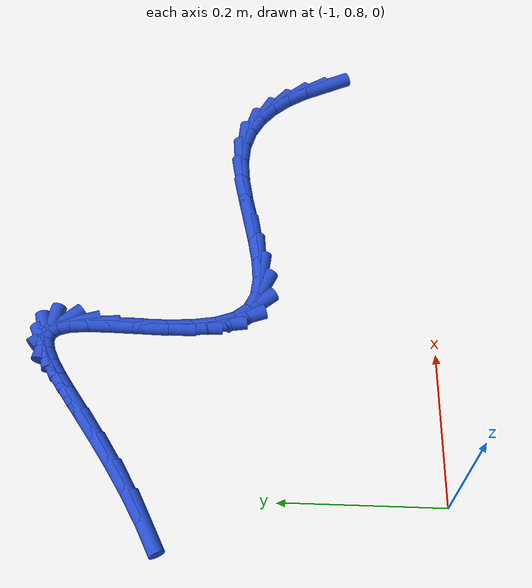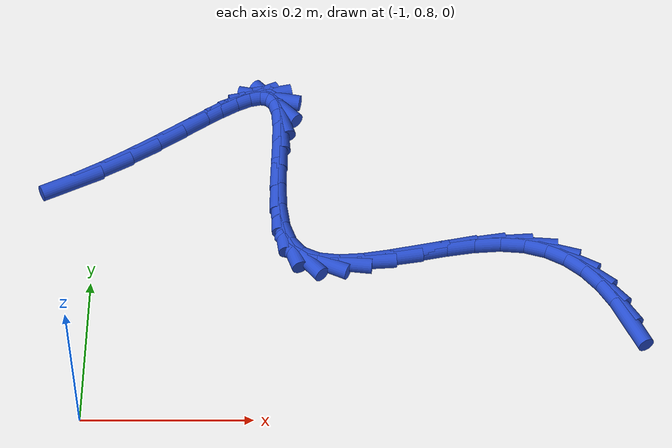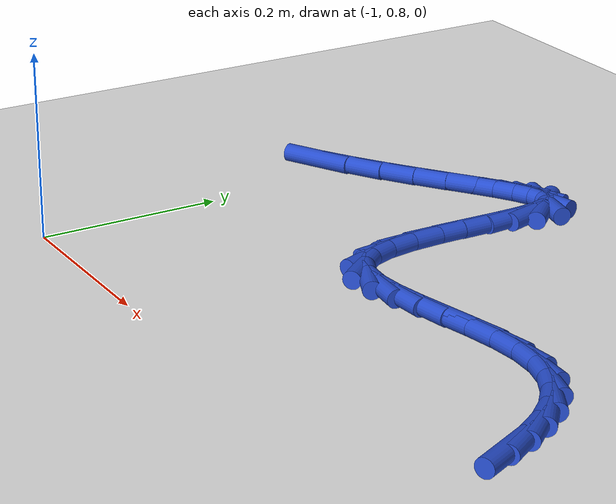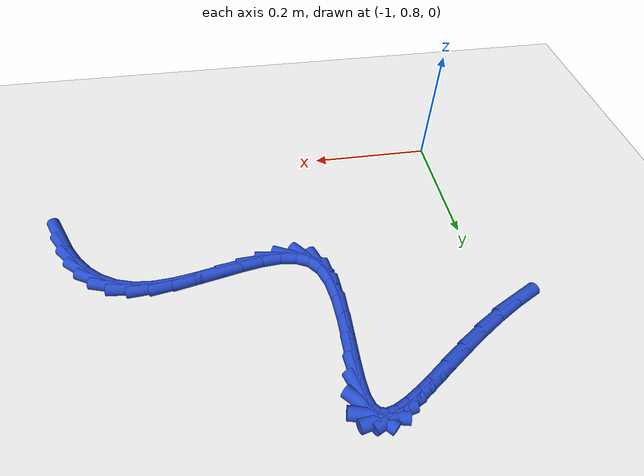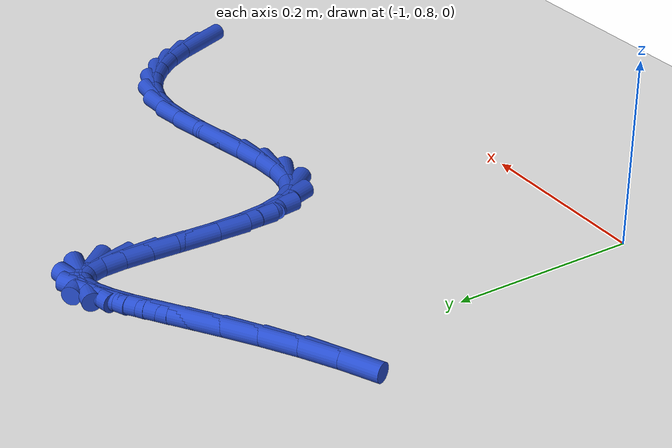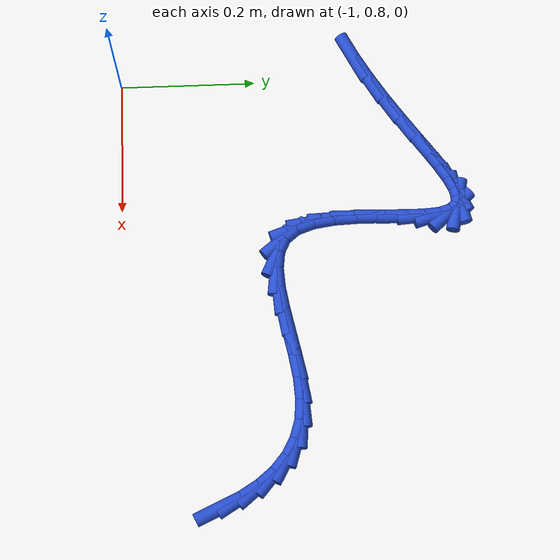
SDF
<sdf version="1.6">
 <world name="default">
  <model name="ground_plane">
   <static>1</static>
   <link name="link">
    <collision name="collision">
     <geometry><plane><normal>0 0 1</normal><size>100 100</size></plane></geometry>
     <surface><friction><ode><mu>100</mu><mu2>50</mu2></ode></friction></surface>
    </collision>
    <visual name="visual">
     <cast_shadows>0</cast_shadows>
     <geometry><plane><normal>0 0 1</normal><size>100 100</size></plane></geometry>
     <material>
      <script><uri>file://media/materials/scripts/gazebo.material</uri><name>Gazebo/WhiteGlow</name></script>
     </material>
    </visual>
   </link>
  </model>
  <model name="line">
   <link name="link_35">
    <pose>-0.35847328944588197 0.9370278014320105 0.01 0 1.57 -1.1396118701778544</pose>
    <collision name="collision">
     <geometry><cylinder><radius>0.01</radius><length>0.08</length></cylinder></geometry>
    </collision>
    <visual name="visual">
     <material>
      <script><name>Gazebo/Blue</name><uri>file://media/materials/scripts/gazebo.material</uri></script>
     </material>
     <geometry><cylinder><radius>0.01</radius><length>0.08</length></cylinder></geometry>
    </visual>
   </link>
   <link name="link_36">
    <pose>-0.37161186978817784 0.9655864937378841 0.01 0 1.57 -1.0203752992261192</pose>
    <collision name="collision">
     <geometry><cylinder><radius>0.01</radius><length>0.08</length></cylinder></geometry>
    </collision>
    <visual name="visual">
     <material>
      <script><name>Gazebo/Blue</name><uri>file://media/materials/scripts/gazebo.material</uri></script>
     </material>
     <geometry><cylinder><radius>0.01</radius><length>0.08</length></cylinder></geometry>
    </visual>
   </link>
   <link name="link_37">
    <pose>-0.3872520079518267 0.9910721207037754 0.01 0 1.57 -0.8756375920364509</pose>
    <collision name="collision">
     <geometry><cylinder><radius>0.01</radius><length>0.08</length></cylinder></geometry>
    </collision>
    <visual name="visual">
     <material>
      <script><name>Gazebo/Blue</name><uri>file://media/materials/scripts/gazebo.material</uri></script>
     </material>
     <geometry><cylinder><radius>0.01</radius><length>0.08</length></cylinder></geometry>
    </visual>
   </link>
   <link name="link_38">
    <pose>-0.4055128491173675 1.0129664054069603 0.01 0 1.57 -0.7026689082415356</pose>
    <collision name="collision">
     <geometry><cylinder><radius>0.01</radius><length>0.08</length></cylinder></geometry>
    </collision>
    <visual name="visual">
     <material>
      <script><name>Gazebo/Blue</name><uri>file://media/materials/scripts/gazebo.material</uri></script>
     </material>
     <geometry><cylinder><radius>0.01</radius><length>0.08</length></cylinder></geometry>
    </visual>
   </link>
   <link name="link_39">
    <pose>-0.42651353846533946 1.0307510709247152 0.01 0 1.57 -0.5039347985222223</pose>
    <collision name="collision">
     <geometry><cylinder><radius>0.01</radius><length>0.08</length></cylinder></geometry>
    </collision>
    <visual name="visual">
     <material>
      <script><name>Gazebo/Blue</name><uri>file://media/materials/scripts/gazebo.material</uri></script>
     </material>
     <geometry><cylinder><radius>0.01</radius><length>0.08</length></cylinder></geometry>
    </visual>
   </link>
   <link name="link_40">
    <pose>-0.45037322117628154 1.0439078403343163 0.01 0 1.57 -0.2900632042792648</pose>
    <collision name="collision">
     <geometry><cylinder><radius>0.01</radius><length>0.08</length></cylinder></geometry>
    </collision>
    <visual name="visual">
     <material>
      <script><name>Gazebo/Blue</name><uri>file://media/materials/scripts/gazebo.material</uri></script>
     </material>
     <geometry><cylinder><radius>0.01</radius><length>0.08</length></cylinder></geometry>
    </visual>
   </link>
   <link name="link_41">
    <pose>-0.4772110424307331 1.05191843671304 0.01 0 1.57 -0.08105332584894963</pose>
    <collision name="collision">
     <geometry><cylinder><radius>0.01</radius><length>0.08</length></cylinder></geometry>
    </collision>
    <visual name="visual">
     <material>
      <script><name>Gazebo/Blue</name><uri>file://media/materials/scripts/gazebo.material</uri></script>
     </material>
     <geometry><cylinder><radius>0.01</radius><length>0.08</length></cylinder></geometry>
    </visual>
   </link>
   <link name="link_42">
    <pose>-0.5071016873078441 1.0543464923741948 0.01 0 1.57 0.07438077698261866</pose>
    <collision name="collision">
     <geometry><cylinder><radius>0.01</radius><length>0.08</length></cylinder></geometry>
    </collision>
    <visual name="visual">
     <material>
      <script><name>Gazebo/Blue</name><uri>file://media/materials/scripts/gazebo.material</uri></script>
     </material>
     <geometry><cylinder><radius>0.01</radius><length>0.08</length></cylinder></geometry>
    </visual>
   </link>
   <link name="link_43">
    <pose>-0.5394803999400526 1.0519336873142304 0.01 0 1.57 0.16491094727989716</pose>
    <collision name="collision">
     <geometry><cylinder><radius>0.01</radius><length>0.08</length></cylinder></geometry>
    </collision>
    <visual name="visual">
     <material>
      <script><name>Gazebo/Blue</name><uri>file://media/materials/scripts/gazebo.material</uri></script>
     </material>
     <geometry><cylinder><radius>0.01</radius><length>0.08</length></cylinder></geometry>
    </visual>
   </link>
   <link name="link_44">
    <pose>-0.573303058745685 1.0463048412030729 0.01 0 1.57 0.20739517713781389</pose>
    <collision name="collision">
     <geometry><cylinder><radius>0.01</radius><length>0.08</length></cylinder></geometry>
    </collision>
    <visual name="visual">
     <material>
      <script><name>Gazebo/Blue</name><uri>file://media/materials/scripts/gazebo.material</uri></script>
     </material>
     <geometry><cylinder><radius>0.01</radius><length>0.08</length></cylinder></geometry>
    </visual>
   </link>
   <link name="link_45">
    <pose>-0.6075139325860752 1.0391061620996551 0.01 0 1.57 0.20922395566981875</pose>
    <collision name="collision">
     <geometry><cylinder><radius>0.01</radius><length>0.08</length></cylinder></geometry>
    </collision>
    <visual name="visual">
     <material>
      <script><name>Gazebo/Blue</name><uri>file://media/materials/scripts/gazebo.material</uri></script>
     </material>
     <geometry><cylinder><radius>0.01</radius><length>0.08</length></cylinder></geometry>
    </visual>
   </link>
   <link name="link_46">
    <pose>-0.6410572903225589 1.031983858062911 0.01 0 1.57 0.16809393093126634</pose>
    <collision name="collision">
     <geometry><cylinder><radius>0.01</radius><length>0.08</length></cylinder></geometry>
    </collision>
    <visual name="visual">
     <material>
      <script><name>Gazebo/Blue</name><uri>file://media/materials/scripts/gazebo.material</uri></script>
     </material>
     <geometry><cylinder><radius>0.01</radius><length>0.08</length></cylinder></geometry>
    </visual>
   </link>
   <link name="link_47">
    <pose>-0.6728774008164701 1.0265841371517745 0.01 0 1.57 0.06981919899489512</pose>
    <collision name="collision">
     <geometry><cylinder><radius>0.01</radius><length>0.08</length></cylinder></geometry>
    </collision>
    <visual name="visual">
     <material>
      <script><name>Gazebo/Blue</name><uri>file://media/materials/scripts/gazebo.material</uri></script>
     </material>
     <geometry><cylinder><radius>0.01</radius><length>0.08</length></cylinder></geometry>
    </visual>
   </link>
   <link name="link_48">
    <pose>-0.7019185329291444 1.0245532074251793 0.01 0 1.57 -0.11783682985157118</pose>
    <collision name="collision">
     <geometry><cylinder><radius>0.01</radius><length>0.08</length></cylinder></geometry>
    </collision>
    <visual name="visual">
     <material>
      <script><name>Gazebo/Blue</name><uri>file://media/materials/scripts/gazebo.material</uri></script>
     </material>
     <geometry><cylinder><radius>0.01</radius><length>0.08</length></cylinder></geometry>
    </visual>
   </link>
   <link name="link_49">
    <pose>-0.7271249555219156 1.0275372769420579 0.01 0 1.57 -0.44325495950887006</pose>
    <collision name="collision">
     <geometry><cylinder><radius>0.01</radius><length>0.08</length></cylinder></geometry>
    </collision>
    <visual name="visual">
     <material>
      <script><name>Gazebo/Blue</name><uri>file://media/materials/scripts/gazebo.material</uri></script>
     </material>
     <geometry><cylinder><radius>0.01</radius><length>0.08</length></cylinder></geometry>
    </visual>
   </link>
   <link name="link_50">
    <pose>-0.7474409374561191 1.0371825537613448 0.01 0 1.57 -0.8888479600028352</pose>
    <collision name="collision">
     <geometry><cylinder><radius>0.01</radius><length>0.08</length></cylinder></geometry>
    </collision>
    <visual name="visual">
     <material>
      <script><name>Gazebo/Blue</name><uri>file://media/materials/scripts/gazebo.material</uri></script>
     </material>
     <geometry><cylinder><radius>0.01</radius><length>0.08</length></cylinder></geometry>
    </visual>
   </link>
   <link name="link_51">
    <pose>-0.7618979484859402 1.0549891901640607 0.01 0 1.57 -1.233575787511971</pose>
    <collision name="collision">
     <geometry><cylinder><radius>0.01</radius><length>0.08</length></cylinder></geometry>
    </collision>
    <visual name="visual">
     <material>
      <script><name>Gazebo/Blue</name><uri>file://media/materials/scripts/gazebo.material</uri></script>
     </material>
     <geometry><cylinder><radius>0.01</radius><length>0.08</length></cylinder></geometry>
    </visual>
   </link>
   <link name="link_52">
    <pose>-0.770788234737268 1.0803456206755673 0.01 0 1.57 -1.4232304259485271</pose>
    <collision name="collision">
     <geometry><cylinder><radius>0.01</radius><length>0.08</length></cylinder></geometry>
    </collision>
    <visual name="visual">
     <material>
      <script><name>Gazebo/Blue</name><uri>file://media/materials/scripts/gazebo.material</uri></script>
     </material>
     <geometry><cylinder><radius>0.01</radius><length>0.08</length></cylinder></geometry>
    </visual>
   </link>
   <link name="link_53">
    <pose>-0.7753525641820457 1.1110515679220343 0.01 0 1.57 -1.5264002954903875</pose>
    <collision name="collision">
     <geometry><cylinder><radius>0.01</radius><length>0.08</length></cylinder></geometry>
    </collision>
    <visual name="visual">
     <material>
      <script><name>Gazebo/Blue</name><uri>file://media/materials/scripts/gazebo.material</uri></script>
     </material>
     <geometry><cylinder><radius>0.01</radius><length>0.08</length></cylinder></geometry>
    </visual>
   </link>
   <link name="link_54">
    <pose>-0.77685486504506 1.1448679626246954 0.01 0 1.57 1.5622690475915566</pose>
    <collision name="collision">
     <geometry><cylinder><radius>0.01</radius><length>0.08</length></cylinder></geometry>
    </collision>
    <visual name="visual">
     <material>
      <script><name>Gazebo/Blue</name><uri>file://media/materials/scripts/gazebo.material</uri></script>
     </material>
     <geometry><cylinder><radius>0.01</radius><length>0.08</length></cylinder></geometry>
    </visual>
   </link>
   <link name="link_55">
    <pose>-0.7765590655510981 1.1795557355047872 0.01 0 1.57 1.5458924252806907</pose>
    <collision name="collision">
     <geometry><cylinder><radius>0.01</radius><length>0.08</length></cylinder></geometry>
    </collision>
    <visual name="visual">
     <material>
      <script><name>Gazebo/Blue</name><uri>file://media/materials/scripts/gazebo.material</uri></script>
     </material>
     <geometry><cylinder><radius>0.01</radius><length>0.08</length></cylinder></geometry>
    </visual>
   </link>
   <link name="link_56">
    <pose>-0.7757290939249464 1.212875817283543 0.01 0 1.57 1.5674235919796078</pose>
    <collision name="collision">
     <geometry><cylinder><radius>0.01</radius><length>0.08</length></cylinder></geometry>
    </collision>
    <visual name="visual">
     <material>
      <script><name>Gazebo/Blue</name><uri>file://media/materials/scripts/gazebo.material</uri></script>
     </material>
     <geometry><cylinder><radius>0.01</radius><length>0.08</length></cylinder></geometry>
    </visual>
   </link>
   <link name="link_57">
    <pose>-0.7756288783913917 1.2425891386821988 0.01 0 1.57 -1.4916295899030938</pose>
    <collision name="collision">
     <geometry><cylinder><radius>0.01</radius><length>0.08</length></cylinder></geometry>
    </collision>
    <visual name="visual">
     <material>
      <script><name>Gazebo/Blue</name><uri>file://media/materials/scripts/gazebo.material</uri></script>
     </material>
     <geometry><cylinder><radius>0.01</radius><length>0.08</length></cylinder></geometry>
    </visual>
   </link>
   <link name="link_58">
    <pose>-0.7775223471752208 1.2664566304219889 0.01 0 1.57 -1.2760250386366485</pose>
    <collision name="collision">
     <geometry><cylinder><radius>0.01</radius><length>0.08</length></cylinder></geometry>
    </collision>
    <visual name="visual">
     <material>
      <script><name>Gazebo/Blue</name><uri>file://media/materials/scripts/gazebo.material</uri></script>
     </material>
     <geometry><cylinder><radius>0.01</radius><length>0.08</length></cylinder></geometry>
    </visual>
   </link>
   <link name="link_59">
    <pose>-0.782460714802814 1.2827217844403203 0.01 0 1.57 -0.8311810726080536</pose>
    <collision name="collision">
     <geometry><cylinder><radius>0.01</radius><length>0.08</length></cylinder></geometry>
    </collision>
    <visual name="visual">
     <material>
      <script><name>Gazebo/Blue</name><uri>file://media/materials/scripts/gazebo.material</uri></script>
     </material>
     <geometry><cylinder><radius>0.01</radius><length>0.08</length></cylinder></geometry>
    </visual>
   </link>
   <link name="link_60">
    <pose>-0.7906048292974288 1.291647973602834 0.01 0 1.57 -0.20789837078167367</pose>
    <collision name="collision">
     <geometry><cylinder><radius>0.01</radius><length>0.08</length></cylinder></geometry>
    </collision>
    <visual name="visual">
     <material>
      <script><name>Gazebo/Blue</name><uri>file://media/materials/scripts/gazebo.material</uri></script>
     </material>
     <geometry><cylinder><radius>0.01</radius><length>0.08</length></cylinder></geometry>
    </visual>
   </link>
   <link name="link_61">
    <pose>-0.8018826147062852 1.294026980924564 0.01 0 1.57 0.23125044733251585</pose>
    <collision name="collision">
     <geometry><cylinder><radius>0.01</radius><length>0.08</length></cylinder></geometry>
    </collision>
    <visual name="visual">
     <material>
      <script><name>Gazebo/Blue</name><uri>file://media/materials/scripts/gazebo.material</uri></script>
     </material>
     <geometry><cylinder><radius>0.01</radius><length>0.08</length></cylinder></geometry>
    </visual>
   </link>
   <link name="link_62">
    <pose>-0.8162219943056115 1.2906505911696078 0.01 0 1.57 0.4485574477888663</pose>
    <collision name="collision">
     <geometry><cylinder><radius>0.01</radius><length>0.08</length></cylinder></geometry>
    </collision>
    <visual name="visual">
     <material>
      <script><name>Gazebo/Blue</name><uri>file://media/materials/scripts/gazebo.material</uri></script>
     </material>
     <geometry><cylinder><radius>0.01</radius><length>0.08</length></cylinder></geometry>
    </visual>
   </link>
   <link name="link_63">
    <pose>-0.8335508913716372 1.2823105891020627 0.01 0 1.57 0.5535352118681327</pose>
    <collision name="collision">
     <geometry><cylinder><radius>0.01</radius><length>0.08</length></cylinder></geometry>
    </collision>
    <visual name="visual">
     <material>
      <script><name>Gazebo/Blue</name><uri>file://media/materials/scripts/gazebo.material</uri></script>
     </material>
     <geometry><cylinder><radius>0.01</radius><length>0.08</length></cylinder></geometry>
    </visual>
   </link>
   <link name="link_64">
    <pose>-0.8537972291805915 1.2697987594860274 0.01 0 1.57 0.6027673184308271</pose>
    <collision name="collision">
     <geometry><cylinder><radius>0.01</radius><length>0.08</length></cylinder></geometry>
    </collision>
    <visual name="visual">
     <material>
      <script><name>Gazebo/Blue</name><uri>file://media/materials/scripts/gazebo.material</uri></script>
     </material>
     <geometry><cylinder><radius>0.01</radius><length>0.08</length></cylinder></geometry>
    </visual>
   </link>
   <link name="link_65">
    <pose>-0.8768889310087031 1.253906887085599 0.01 0 1.57 0.6203810149422853</pose>
    <collision name="collision">
     <geometry><cylinder><radius>0.01</radius><length>0.08</length></cylinder></geometry>
    </collision>
    <visual name="visual">
     <material>
      <script><name>Gazebo/Blue</name><uri>file://media/materials/scripts/gazebo.material</uri></script>
     </material>
     <geometry><cylinder><radius>0.01</radius><length>0.08</length></cylinder></geometry>
    </visual>
   </link>
   <link name="link_66">
    <pose>-0.9027539201322017 1.2354267566648751 0.01 0 1.57 0.6172802450716407</pose>
    <collision name="collision">
     <geometry><cylinder><radius>0.01</radius><length>0.08</length></cylinder></geometry>
    </collision>
    <visual name="visual">
     <material>
      <script><name>Gazebo/Blue</name><uri>file://media/materials/scripts/gazebo.material</uri></script>
     </material>
     <geometry><cylinder><radius>0.01</radius><length>0.08</length></cylinder></geometry>
    </visual>
   </link>
   <link name="link_67">
    <pose>-0.931320119827316 1.2151501529879543 0.01 0 1.57 0.5986759002125898</pose>
    <collision name="collision">
     <geometry><cylinder><radius>0.01</radius><length>0.08</length></cylinder></geometry>
    </collision>
    <visual name="visual">
     <material>
      <script><name>Gazebo/Blue</name><uri>file://media/materials/scripts/gazebo.material</uri></script>
     </material>
     <geometry><cylinder><radius>0.01</radius><length>0.08</length></cylinder></geometry>
    </visual>
   </link>
   <link name="link_68">
    <pose>-0.9625154533702756 1.1938688608189338 0.01 0 1.57 0.5670539417128708</pose>
    <collision name="collision">
     <geometry><cylinder><radius>0.01</radius><length>0.08</length></cylinder></geometry>
    </collision>
    <visual name="visual">
     <material>
      <script><name>Gazebo/Blue</name><uri>file://media/materials/scripts/gazebo.material</uri></script>
     </material>
     <geometry><cylinder><radius>0.01</radius><length>0.08</length></cylinder></geometry>
    </visual>
   </link>
   <link name="link_69">
    <pose>-0.996267844037309 1.1723746649219118 0.01 0 1.57 0.5234675251830496</pose>
    <collision name="collision">
     <geometry><cylinder><radius>0.01</radius><length>0.08</length></cylinder></geometry>
    </collision>
    <visual name="visual">
     <material>
      <script><name>Gazebo/Blue</name><uri>file://media/materials/scripts/gazebo.material</uri></script>
     </material>
     <geometry><cylinder><radius>0.01</radius><length>0.08</length></cylinder></geometry>
    </visual>
   </link>
   <link name="link_70">
    <pose>-1.032505215104646 1.151459350060986 0.01 0 1.57 0.4681808267219978</pose>
    <collision name="collision">
     <geometry><cylinder><radius>0.01</radius><length>0.08</length></cylinder></geometry>
    </collision>
    <visual name="visual">
     <material>
      <script><name>Gazebo/Blue</name><uri>file://media/materials/scripts/gazebo.material</uri></script>
     </material>
     <geometry><cylinder><radius>0.01</radius><length>0.08</length></cylinder></geometry>
    </visual>
   </link>
  </model>
 </world>
</sdf>
